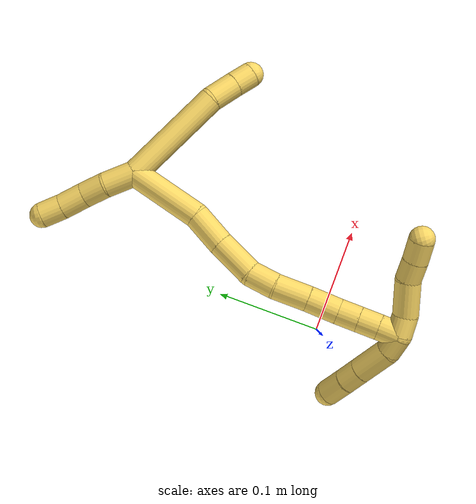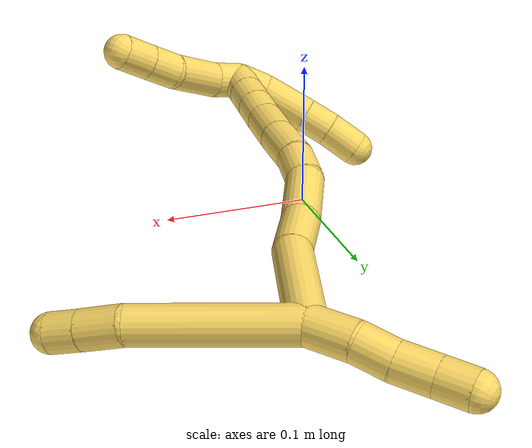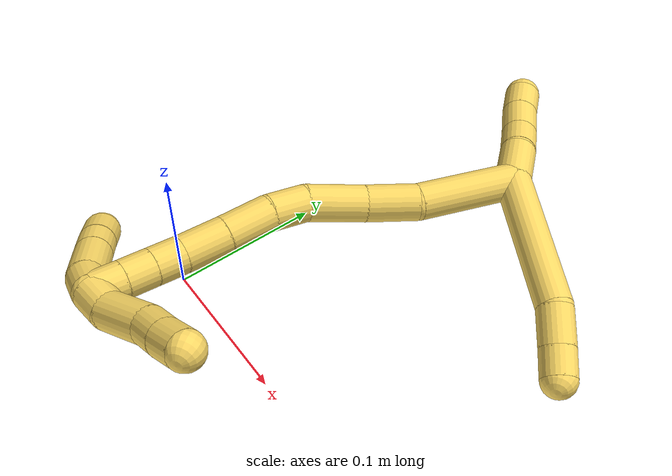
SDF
<sdf version="1.7">
 <world name="default">
  <model name="5">
   <static>0</static>
   <link name="5">
    <collision name="collision-cylinder-e_1_2_8">
     <pose>0.001645 0.026453 -0.04385 -2.59879 0.032106 -0.115259</pose>
     <geometry><cylinder><radius>0.0125</radius><length>0.102475</length></cylinder></geometry>
     <surface>
      <friction><ode><mu>1.16</mu><mu2>1.16</mu2><slip1>0</slip1><slip2>0</slip2></ode></friction>
      <contact><ode><kp>1e+06</kp><kd>1</kd><max_vel>0</max_vel><min_depth>0.001</min_depth></ode></contact>
     </surface>
    </collision>
    <visual name="visual-cylinder-e_1_2_8">
     <pose>0.001645 0.026453 -0.04385 -2.59879 0.032106 -0.115259</pose>
     <geometry><cylinder><radius>0.0125</radius><length>0.102475</length></cylinder></geometry>
     <material><ambient>1 0.858824 0.4 1</ambient></material>
    </visual>
    <collision name="collision-cylinder-e_2_8_9">
     <pose>-2.4e-05 0.059229 -0.09933 -2.64358 -0.245286 0.902729</pose>
     <geometry><cylinder><radius>0.0125</radius><length>0.027293</length></cylinder></geometry>
     <surface>
      <friction><ode><mu>1.16</mu><mu2>1.16</mu2><slip1>0</slip1><slip2>0</slip2></ode></friction>
      <contact><ode><kp>1e+06</kp><kd>1</kd><max_vel>0</max_vel><min_depth>0.001</min_depth></ode></contact>
     </surface>
    </collision>
    <visual name="visual-cylinder-e_2_8_9">
     <pose>-2.4e-05 0.059229 -0.09933 -2.64358 -0.245286 0.902729</pose>
     <geometry><cylinder><radius>0.0125</radius><length>0.027293</length></cylinder></geometry>
     <material><ambient>1 0.858824 0.4 1</ambient></material>
    </visual>
    <collision name="collision-cylinder-e_3_9_6">
     <pose>-0.005839 0.069988 -0.119701 -2.67203 -0.249788 0.966697</pose>
     <geometry><cylinder><radius>0.0125</radius><length>0.020232</length></cylinder></geometry>
     <surface>
      <friction><ode><mu>1.16</mu><mu2>1.16</mu2><slip1>0</slip1><slip2>0</slip2></ode></friction>
      <contact><ode><kp>1e+06</kp><kd>1</kd><max_vel>0</max_vel><min_depth>0.001</min_depth></ode></contact>
     </surface>
    </collision>
    <visual name="visual-cylinder-e_3_9_6">
     <pose>-0.005839 0.069988 -0.119701 -2.67203 -0.249788 0.966697</pose>
     <geometry><cylinder><radius>0.0125</radius><length>0.020232</length></cylinder></geometry>
     <material><ambient>1 0.858824 0.4 1</ambient></material>
    </visual>
    <collision name="collision-cylinder-e_1_2_10">
     <pose>0.000707 -0.001978 0.015009 0.131022 0.046638 0.00306</pose>
     <geometry><cylinder><radius>0.0125</radius><length>0.03031</length></cylinder></geometry>
     <surface>
      <friction><ode><mu>1.16</mu><mu2>1.16</mu2><slip1>0</slip1><slip2>0</slip2></ode></friction>
      <contact><ode><kp>1e+06</kp><kd>1</kd><max_vel>0</max_vel><min_depth>0.001</min_depth></ode></contact>
     </surface>
    </collision>
    <visual name="visual-cylinder-e_1_2_10">
     <pose>0.000707 -0.001978 0.015009 0.131022 0.046638 0.00306</pose>
     <geometry><cylinder><radius>0.0125</radius><length>0.03031</length></cylinder></geometry>
     <material><ambient>1 0.858824 0.4 1</ambient></material>
    </visual>
    <collision name="collision-cylinder-e_2_10_11">
     <pose>-0.000335 -0.004888 0.041436 0.081434 -0.15142 -0.006181</pose>
     <geometry><cylinder><radius>0.0125</radius><length>0.023179</length></cylinder></geometry>
     <surface>
      <friction><ode><mu>1.16</mu><mu2>1.16</mu2><slip1>0</slip1><slip2>0</slip2></ode></friction>
      <contact><ode><kp>1e+06</kp><kd>1</kd><max_vel>0</max_vel><min_depth>0.001</min_depth></ode></contact>
     </surface>
    </collision>
    <visual name="visual-cylinder-e_2_10_11">
     <pose>-0.000335 -0.004888 0.041436 0.081434 -0.15142 -0.006181</pose>
     <geometry><cylinder><radius>0.0125</radius><length>0.023179</length></cylinder></geometry>
     <material><ambient>1 0.858824 0.4 1</ambient></material>
    </visual>
    <collision name="collision-cylinder-e_3_11_12">
     <pose>-0.002898 -0.007983 0.065075 0.17519 -0.065563 -0.00576</pose>
     <geometry><cylinder><radius>0.0125</radius><length>0.024874</length></cylinder></geometry>
     <surface>
      <friction><ode><mu>1.16</mu><mu2>1.16</mu2><slip1>0</slip1><slip2>0</slip2></ode></friction>
      <contact><ode><kp>1e+06</kp><kd>1</kd><max_vel>0</max_vel><min_depth>0.001</min_depth></ode></contact>
     </surface>
    </collision>
    <visual name="visual-cylinder-e_3_11_12">
     <pose>-0.002898 -0.007983 0.065075 0.17519 -0.065563 -0.00576</pose>
     <geometry><cylinder><radius>0.0125</radius><length>0.024874</length></cylinder></geometry>
     <material><ambient>1 0.858824 0.4 1</ambient></material>
    </visual>
    <collision name="collision-cylinder-e_4_12_5">
     <pose>-0.00357 -0.011565 0.08802 0.13157 0.013225 0.000871</pose>
     <geometry><cylinder><radius>0.0125</radius><length>0.021637</length></cylinder></geometry>
     <surface>
      <friction><ode><mu>1.16</mu><mu2>1.16</mu2><slip1>0</slip1><slip2>0</slip2></ode></friction>
      <contact><ode><kp>1e+06</kp><kd>1</kd><max_vel>0</max_vel><min_depth>0.001</min_depth></ode></contact>
     </surface>
    </collision>
    <visual name="visual-cylinder-e_4_12_5">
     <pose>-0.00357 -0.011565 0.08802 0.13157 0.013225 0.000871</pose>
     <geometry><cylinder><radius>0.0125</radius><length>0.021637</length></cylinder></geometry>
     <material><ambient>1 0.858824 0.4 1</ambient></material>
    </visual>
    <collision name="collision-cylinder-e_1_2_13">
     <pose>-0.013098 -0.024548 -0.023221 2.32841 -0.369778 -0.819528</pose>
     <geometry><cylinder><radius>0.0125</radius><length>0.072481</length></cylinder></geometry>
     <surface>
      <friction><ode><mu>1.16</mu><mu2>1.16</mu2><slip1>0</slip1><slip2>0</slip2></ode></friction>
      <contact><ode><kp>1e+06</kp><kd>1</kd><max_vel>0</max_vel><min_depth>0.001</min_depth></ode></contact>
     </surface>
    </collision>
    <visual name="visual-cylinder-e_1_2_13">
     <pose>-0.013098 -0.024548 -0.023221 2.32841 -0.369778 -0.819528</pose>
     <geometry><cylinder><radius>0.0125</radius><length>0.072481</length></cylinder></geometry>
     <material><ambient>1 0.858824 0.4 1</ambient></material>
    </visual>
    <collision name="collision-cylinder-e_2_13_14">
     <pose>-0.033558 -0.063551 -0.054096 2.0578 -0.42301 -0.685204</pose>
     <geometry><cylinder><radius>0.0125</radius><length>0.035874</length></cylinder></geometry>
     <surface>
      <friction><ode><mu>1.16</mu><mu2>1.16</mu2><slip1>0</slip1><slip2>0</slip2></ode></friction>
      <contact><ode><kp>1e+06</kp><kd>1</kd><max_vel>0</max_vel><min_depth>0.001</min_depth></ode></contact>
     </surface>
    </collision>
    <visual name="visual-cylinder-e_2_13_14">
     <pose>-0.033558 -0.063551 -0.054096 2.0578 -0.42301 -0.685204</pose>
     <geometry><cylinder><radius>0.0125</radius><length>0.035874</length></cylinder></geometry>
     <material><ambient>1 0.858824 0.4 1</ambient></material>
    </visual>
    <collision name="collision-cylinder-e_3_14_15">
     <pose>-0.046614 -0.094662 -0.071959 2.12064 -0.283513 -0.499081</pose>
     <geometry><cylinder><radius>0.0125</radius><length>0.040696</length></cylinder></geometry>
     <surface>
      <friction><ode><mu>1.16</mu><mu2>1.16</mu2><slip1>0</slip1><slip2>0</slip2></ode></friction>
      <contact><ode><kp>1e+06</kp><kd>1</kd><max_vel>0</max_vel><min_depth>0.001</min_depth></ode></contact>
     </surface>
    </collision>
    <visual name="visual-cylinder-e_3_14_15">
     <pose>-0.046614 -0.094662 -0.071959 2.12064 -0.283513 -0.499081</pose>
     <geometry><cylinder><radius>0.0125</radius><length>0.040696</length></cylinder></geometry>
     <material><ambient>1 0.858824 0.4 1</ambient></material>
    </visual>
    <collision name="collision-cylinder-e_4_15_16">
     <pose>-0.056074 -0.119454 -0.091792 2.43987 -0.290561 -0.76058</pose>
     <geometry><cylinder><radius>0.0125</radius><length>0.026308</length></cylinder></geometry>
     <surface>
      <friction><ode><mu>1.16</mu><mu2>1.16</mu2><slip1>0</slip1><slip2>0</slip2></ode></friction>
      <contact><ode><kp>1e+06</kp><kd>1</kd><max_vel>0</max_vel><min_depth>0.001</min_depth></ode></contact>
     </surface>
    </collision>
    <visual name="visual-cylinder-e_4_15_16">
     <pose>-0.056074 -0.119454 -0.091792 2.43987 -0.290561 -0.76058</pose>
     <geometry><cylinder><radius>0.0125</radius><length>0.026308</length></cylinder></geometry>
     <material><ambient>1 0.858824 0.4 1</ambient></material>
    </visual>
    <collision name="collision-cylinder-e_5_16_17">
     <pose>-0.065913 -0.135574 -0.114588 2.59657 -0.375448 -1.19398</pose>
     <geometry><cylinder><radius>0.0125</radius><length>0.033111</length></cylinder></geometry>
     <surface>
      <friction><ode><mu>1.16</mu><mu2>1.16</mu2><slip1>0</slip1><slip2>0</slip2></ode></friction>
      <contact><ode><kp>1e+06</kp><kd>1</kd><max_vel>0</max_vel><min_depth>0.001</min_depth></ode></contact>
     </surface>
    </collision>
    <visual name="visual-cylinder-e_5_16_17">
     <pose>-0.065913 -0.135574 -0.114588 2.59657 -0.375448 -1.19398</pose>
     <geometry><cylinder><radius>0.0125</radius><length>0.033111</length></cylinder></geometry>
     <material><ambient>1 0.858824 0.4 1</ambient></material>
    </visual>
    <collision name="collision-cylinder-e_6_17_18">
     <pose>-0.077902 -0.151353 -0.139637 2.5609 -0.394672 -1.17945</pose>
     <geometry><cylinder><radius>0.0125</radius><length>0.03078</length></cylinder></geometry>
     <surface>
      <friction><ode><mu>1.16</mu><mu2>1.16</mu2><slip1>0</slip1><slip2>0</slip2></ode></friction>
      <contact><ode><kp>1e+06</kp><kd>1</kd><max_vel>0</max_vel><min_depth>0.001</min_depth></ode></contact>
     </surface>
    </collision>
    <visual name="visual-cylinder-e_6_17_18">
     <pose>-0.077902 -0.151353 -0.139637 2.5609 -0.394672 -1.17945</pose>
     <geometry><cylinder><radius>0.0125</radius><length>0.03078</length></cylinder></geometry>
     <material><ambient>1 0.858824 0.4 1</ambient></material>
    </visual>
    <collision name="collision-cylinder-e_7_18_19">
     <pose>-0.086816 -0.164553 -0.159805 2.56382 -0.294018 -0.924479</pose>
     <geometry><cylinder><radius>0.0125</radius><length>0.020682</length></cylinder></geometry>
     <surface>
      <friction><ode><mu>1.16</mu><mu2>1.16</mu2><slip1>0</slip1><slip2>0</slip2></ode></friction>
      <contact><ode><kp>1e+06</kp><kd>1</kd><max_vel>0</max_vel><min_depth>0.001</min_depth></ode></contact>
     </surface>
    </collision>
    <visual name="visual-cylinder-e_7_18_19">
     <pose>-0.086816 -0.164553 -0.159805 2.56382 -0.294018 -0.924479</pose>
     <geometry><cylinder><radius>0.0125</radius><length>0.020682</length></cylinder></geometry>
     <material><ambient>1 0.858824 0.4 1</ambient></material>
    </visual>
    <collision name="collision-cylinder-e_8_19_20">
     <pose>-0.092791 -0.175181 -0.176101 2.56355 -0.302108 -0.946248</pose>
     <geometry><cylinder><radius>0.0125</radius><length>0.020022</length></cylinder></geometry>
     <surface>
      <friction><ode><mu>1.16</mu><mu2>1.16</mu2><slip1>0</slip1><slip2>0</slip2></ode></friction>
      <contact><ode><kp>1e+06</kp><kd>1</kd><max_vel>0</max_vel><min_depth>0.001</min_depth></ode></contact>
     </surface>
    </collision>
    <visual name="visual-cylinder-e_8_19_20">
     <pose>-0.092791 -0.175181 -0.176101 2.56355 -0.302108 -0.946248</pose>
     <geometry><cylinder><radius>0.0125</radius><length>0.020022</length></cylinder></geometry>
     <material><ambient>1 0.858824 0.4 1</ambient></material>
    </visual>
    <collision name="collision-cylinder-e_9_20_1">
     <pose>-0.098813 -0.185785 -0.191995 2.54285 -0.308486 -0.933264</pose>
     <geometry><cylinder><radius>0.0125</radius><length>0.020045</length></cylinder></geometry>
     <surface>
      <friction><ode><mu>1.16</mu><mu2>1.16</mu2><slip1>0</slip1><slip2>0</slip2></ode></friction>
      <contact><ode><kp>1e+06</kp><kd>1</kd><max_vel>0</max_vel><min_depth>0.001</min_depth></ode></contact>
     </surface>
    </collision>
    <visual name="visual-cylinder-e_9_20_1">
     <pose>-0.098813 -0.185785 -0.191995 2.54285 -0.308486 -0.933264</pose>
     <geometry><cylinder><radius>0.0125</radius><length>0.020045</length></cylinder></geometry>
     <material><ambient>1 0.858824 0.4 1</ambient></material>
    </visual>
    <collision name="collision-cylinder-e_1_1_21">
     <pose>-0.10758 -0.194958 -0.192485 0.473519 -0.602998 -0.149789</pose>
     <geometry><cylinder><radius>0.0125</radius><length>0.020184</length></cylinder></geometry>
     <surface>
      <friction><ode><mu>1.16</mu><mu2>1.16</mu2><slip1>0</slip1><slip2>0</slip2></ode></friction>
      <contact><ode><kp>1e+06</kp><kd>1</kd><max_vel>0</max_vel><min_depth>0.001</min_depth></ode></contact>
     </surface>
    </collision>
    <visual name="visual-cylinder-e_1_1_21">
     <pose>-0.10758 -0.194958 -0.192485 0.473519 -0.602998 -0.149789</pose>
     <geometry><cylinder><radius>0.0125</radius><length>0.020184</length></cylinder></geometry>
     <material><ambient>1 0.858824 0.4 1</ambient></material>
    </visual>
    <collision name="collision-cylinder-e_2_21_22">
     <pose>-0.121048 -0.201267 -0.169384 0.159051 -0.453179 -0.036742</pose>
     <geometry><cylinder><radius>0.0125</radius><length>0.035379</length></cylinder></geometry>
     <surface>
      <friction><ode><mu>1.16</mu><mu2>1.16</mu2><slip1>0</slip1><slip2>0</slip2></ode></friction>
      <contact><ode><kp>1e+06</kp><kd>1</kd><max_vel>0</max_vel><min_depth>0.001</min_depth></ode></contact>
     </surface>
    </collision>
    <visual name="visual-cylinder-e_2_21_22">
     <pose>-0.121048 -0.201267 -0.169384 0.159051 -0.453179 -0.036742</pose>
     <geometry><cylinder><radius>0.0125</radius><length>0.035379</length></cylinder></geometry>
     <material><ambient>1 0.858824 0.4 1</ambient></material>
    </visual>
    <collision name="collision-cylinder-e_3_22_23">
     <pose>-0.133385 -0.205099 -0.144877 0.148046 -0.476322 -0.036003</pose>
     <geometry><cylinder><radius>0.0125</radius><length>0.020033</length></cylinder></geometry>
     <surface>
      <friction><ode><mu>1.16</mu><mu2>1.16</mu2><slip1>0</slip1><slip2>0</slip2></ode></friction>
      <contact><ode><kp>1e+06</kp><kd>1</kd><max_vel>0</max_vel><min_depth>0.001</min_depth></ode></contact>
     </surface>
    </collision>
    <visual name="visual-cylinder-e_3_22_23">
     <pose>-0.133385 -0.205099 -0.144877 0.148046 -0.476322 -0.036003</pose>
     <geometry><cylinder><radius>0.0125</radius><length>0.020033</length></cylinder></geometry>
     <material><ambient>1 0.858824 0.4 1</ambient></material>
    </visual>
    <collision name="collision-cylinder-e_4_23_4">
     <pose>-0.144204 -0.207393 -0.125625 0.093573 -0.53545 -0.025686</pose>
     <geometry><cylinder><radius>0.0125</radius><length>0.024404</length></cylinder></geometry>
     <surface>
      <friction><ode><mu>1.16</mu><mu2>1.16</mu2><slip1>0</slip1><slip2>0</slip2></ode></friction>
      <contact><ode><kp>1e+06</kp><kd>1</kd><max_vel>0</max_vel><min_depth>0.001</min_depth></ode></contact>
     </surface>
    </collision>
    <visual name="visual-cylinder-e_4_23_4">
     <pose>-0.144204 -0.207393 -0.125625 0.093573 -0.53545 -0.025686</pose>
     <geometry><cylinder><radius>0.0125</radius><length>0.024404</length></cylinder></geometry>
     <material><ambient>1 0.858824 0.4 1</ambient></material>
    </visual>
    <collision name="collision-cylinder-e_1_1_24">
     <pose>-0.097208 -0.184094 -0.205524 -2.24403 0.474612 -0.930907</pose>
     <geometry><cylinder><radius>0.0125</radius><length>0.020344</length></cylinder></geometry>
     <surface>
      <friction><ode><mu>1.16</mu><mu2>1.16</mu2><slip1>0</slip1><slip2>0</slip2></ode></friction>
      <contact><ode><kp>1e+06</kp><kd>1</kd><max_vel>0</max_vel><min_depth>0.001</min_depth></ode></contact>
     </surface>
    </collision>
    <visual name="visual-cylinder-e_1_1_24">
     <pose>-0.097208 -0.184094 -0.205524 -2.24403 0.474612 -0.930907</pose>
     <geometry><cylinder><radius>0.0125</radius><length>0.020344</length></cylinder></geometry>
     <material><ambient>1 0.858824 0.4 1</ambient></material>
    </visual>
    <collision name="collision-cylinder-e_2_24_25">
     <pose>-0.079761 -0.165712 -0.217451 -2.07806 0.780013 -1.21976</pose>
     <geometry><cylinder><radius>0.0125</radius><length>0.036396</length></cylinder></geometry>
     <surface>
      <friction><ode><mu>1.16</mu><mu2>1.16</mu2><slip1>0</slip1><slip2>0</slip2></ode></friction>
      <contact><ode><kp>1e+06</kp><kd>1</kd><max_vel>0</max_vel><min_depth>0.001</min_depth></ode></contact>
     </surface>
    </collision>
    <visual name="visual-cylinder-e_2_24_25">
     <pose>-0.079761 -0.165712 -0.217451 -2.07806 0.780013 -1.21976</pose>
     <geometry><cylinder><radius>0.0125</radius><length>0.036396</length></cylinder></geometry>
     <material><ambient>1 0.858824 0.4 1</ambient></material>
    </visual>
    <collision name="collision-cylinder-e_3_25_26">
     <pose>-0.059861 -0.149341 -0.229708 -2.43838 0.736652 -1.62151</pose>
     <geometry><cylinder><radius>0.0125</radius><length>0.021142</length></cylinder></geometry>
     <surface>
      <friction><ode><mu>1.16</mu><mu2>1.16</mu2><slip1>0</slip1><slip2>0</slip2></ode></friction>
      <contact><ode><kp>1e+06</kp><kd>1</kd><max_vel>0</max_vel><min_depth>0.001</min_depth></ode></contact>
     </surface>
    </collision>
    <visual name="visual-cylinder-e_3_25_26">
     <pose>-0.059861 -0.149341 -0.229708 -2.43838 0.736652 -1.62151</pose>
     <geometry><cylinder><radius>0.0125</radius><length>0.021142</length></cylinder></geometry>
     <material><ambient>1 0.858824 0.4 1</ambient></material>
    </visual>
    <collision name="collision-cylinder-e_4_26_3">
     <pose>-0.044983 -0.138878 -0.241397 -2.38473 0.779771 -1.60376</pose>
     <geometry><cylinder><radius>0.0125</radius><length>0.022118</length></cylinder></geometry>
     <surface>
      <friction><ode><mu>1.16</mu><mu2>1.16</mu2><slip1>0</slip1><slip2>0</slip2></ode></friction>
      <contact><ode><kp>1e+06</kp><kd>1</kd><max_vel>0</max_vel><min_depth>0.001</min_depth></ode></contact>
     </surface>
    </collision>
    <visual name="visual-cylinder-e_4_26_3">
     <pose>-0.044983 -0.138878 -0.241397 -2.38473 0.779771 -1.60376</pose>
     <geometry><cylinder><radius>0.0125</radius><length>0.022118</length></cylinder></geometry>
     <material><ambient>1 0.858824 0.4 1</ambient></material>
    </visual>
    <collision name="collision-sphere-3">
     <pose>-0.037207 -0.133478 -0.247114 0 -0 0</pose>
     <geometry><sphere><radius>0.0125</radius></sphere></geometry>
     <surface>
      <friction><ode><mu>1.16</mu><mu2>1.16</mu2><slip1>0</slip1><slip2>0</slip2></ode></friction>
      <contact><ode><kp>1e+06</kp><kd>1</kd><max_vel>0</max_vel><min_depth>0.001</min_depth></ode></contact>
     </surface>
    </collision>
    <visual name="visual-sphere-3">
     <pose>-0.037207 -0.133478 -0.247114 0 -0 0</pose>
     <geometry><sphere><radius>0.0125</radius></sphere></geometry>
     <material><ambient>1 0.858824 0.4 1</ambient></material>
    </visual>
    <collision name="collision-sphere-26">
     <pose>-0.052759 -0.144277 -0.23568 0 -0 0</pose>
     <geometry><sphere><radius>0.0125</radius></sphere></geometry>
     <surface>
      <friction><ode><mu>1.16</mu><mu2>1.16</mu2><slip1>0</slip1><slip2>0</slip2></ode></friction>
      <contact><ode><kp>1e+06</kp><kd>1</kd><max_vel>0</max_vel><min_depth>0.001</min_depth></ode></contact>
     </surface>
    </collision>
    <visual name="visual-sphere-26">
     <pose>-0.052759 -0.144277 -0.23568 0 -0 0</pose>
     <geometry><sphere><radius>0.0125</radius></sphere></geometry>
     <material><ambient>1 0.858824 0.4 1</ambient></material>
    </visual>
    <collision name="collision-sphere-25">
     <pose>-0.066962 -0.154404 -0.223735 0 -0 0</pose>
     <geometry><sphere><radius>0.0125</radius></sphere></geometry>
     <surface>
      <friction><ode><mu>1.16</mu><mu2>1.16</mu2><slip1>0</slip1><slip2>0</slip2></ode></friction>
      <contact><ode><kp>1e+06</kp><kd>1</kd><max_vel>0</max_vel><min_depth>0.001</min_depth></ode></contact>
     </surface>
    </collision>
    <visual name="visual-sphere-25">
     <pose>-0.066962 -0.154404 -0.223735 0 -0 0</pose>
     <geometry><sphere><radius>0.0125</radius></sphere></geometry>
     <material><ambient>1 0.858824 0.4 1</ambient></material>
    </visual>
    <collision name="collision-sphere-24">
     <pose>-0.092559 -0.17702 -0.211166 0 -0 0</pose>
     <geometry><sphere><radius>0.0125</radius></sphere></geometry>
     <surface>
      <friction><ode><mu>1.16</mu><mu2>1.16</mu2><slip1>0</slip1><slip2>0</slip2></ode></friction>
      <contact><ode><kp>1e+06</kp><kd>1</kd><max_vel>0</max_vel><min_depth>0.001</min_depth></ode></contact>
     </surface>
    </collision>
    <visual name="visual-sphere-24">
     <pose>-0.092559 -0.17702 -0.211166 0 -0 0</pose>
     <geometry><sphere><radius>0.0125</radius></sphere></geometry>
     <material><ambient>1 0.858824 0.4 1</ambient></material>
    </visual>
    <collision name="collision-sphere-4">
     <pose>-0.15043 -0.208373 -0.115176 0 -0 0</pose>
     <geometry><sphere><radius>0.0125</radius></sphere></geometry>
     <surface>
      <friction><ode><mu>1.16</mu><mu2>1.16</mu2><slip1>0</slip1><slip2>0</slip2></ode></friction>
      <contact><ode><kp>1e+06</kp><kd>1</kd><max_vel>0</max_vel><min_depth>0.001</min_depth></ode></contact>
     </surface>
    </collision>
    <visual name="visual-sphere-4">
     <pose>-0.15043 -0.208373 -0.115176 0 -0 0</pose>
     <geometry><sphere><radius>0.0125</radius></sphere></geometry>
     <material><ambient>1 0.858824 0.4 1</ambient></material>
    </visual>
    <collision name="collision-sphere-23">
     <pose>-0.137978 -0.206412 -0.136073 0 -0 0</pose>
     <geometry><sphere><radius>0.0125</radius></sphere></geometry>
     <surface>
      <friction><ode><mu>1.16</mu><mu2>1.16</mu2><slip1>0</slip1><slip2>0</slip2></ode></friction>
      <contact><ode><kp>1e+06</kp><kd>1</kd><max_vel>0</max_vel><min_depth>0.001</min_depth></ode></contact>
     </surface>
    </collision>
    <visual name="visual-sphere-23">
     <pose>-0.137978 -0.206412 -0.136073 0 -0 0</pose>
     <geometry><sphere><radius>0.0125</radius></sphere></geometry>
     <material><ambient>1 0.858824 0.4 1</ambient></material>
    </visual>
    <collision name="collision-sphere-22">
     <pose>-0.128793 -0.203786 -0.153681 0 -0 0</pose>
     <geometry><sphere><radius>0.0125</radius></sphere></geometry>
     <surface>
      <friction><ode><mu>1.16</mu><mu2>1.16</mu2><slip1>0</slip1><slip2>0</slip2></ode></friction>
      <contact><ode><kp>1e+06</kp><kd>1</kd><max_vel>0</max_vel><min_depth>0.001</min_depth></ode></contact>
     </surface>
    </collision>
    <visual name="visual-sphere-22">
     <pose>-0.128793 -0.203786 -0.153681 0 -0 0</pose>
     <geometry><sphere><radius>0.0125</radius></sphere></geometry>
     <material><ambient>1 0.858824 0.4 1</ambient></material>
    </visual>
    <collision name="collision-sphere-21">
     <pose>-0.113303 -0.198748 -0.185088 0 -0 0</pose>
     <geometry><sphere><radius>0.0125</radius></sphere></geometry>
     <surface>
      <friction><ode><mu>1.16</mu><mu2>1.16</mu2><slip1>0</slip1><slip2>0</slip2></ode></friction>
      <contact><ode><kp>1e+06</kp><kd>1</kd><max_vel>0</max_vel><min_depth>0.001</min_depth></ode></contact>
     </surface>
    </collision>
    <visual name="visual-sphere-21">
     <pose>-0.113303 -0.198748 -0.185088 0 -0 0</pose>
     <geometry><sphere><radius>0.0125</radius></sphere></geometry>
     <material><ambient>1 0.858824 0.4 1</ambient></material>
    </visual>
    <collision name="collision-sphere-1">
     <pose>-0.101856 -0.191167 -0.199883 0 -0 0</pose>
     <geometry><sphere><radius>0.0125</radius></sphere></geometry>
     <surface>
      <friction><ode><mu>1.16</mu><mu2>1.16</mu2><slip1>0</slip1><slip2>0</slip2></ode></friction>
      <contact><ode><kp>1e+06</kp><kd>1</kd><max_vel>0</max_vel><min_depth>0.001</min_depth></ode></contact>
     </surface>
    </collision>
    <visual name="visual-sphere-1">
     <pose>-0.101856 -0.191167 -0.199883 0 -0 0</pose>
     <geometry><sphere><radius>0.0125</radius></sphere></geometry>
     <material><ambient>1 0.858824 0.4 1</ambient></material>
    </visual>
    <collision name="collision-sphere-11">
     <pose>-0.002083 -0.00582 0.052855 0 -0 0</pose>
     <geometry><sphere><radius>0.0125</radius></sphere></geometry>
     <surface>
      <friction><ode><mu>1.16</mu><mu2>1.16</mu2><slip1>0</slip1><slip2>0</slip2></ode></friction>
      <contact><ode><kp>1e+06</kp><kd>1</kd><max_vel>0</max_vel><min_depth>0.001</min_depth></ode></contact>
     </surface>
    </collision>
    <visual name="visual-sphere-11">
     <pose>-0.002083 -0.00582 0.052855 0 -0 0</pose>
     <geometry><sphere><radius>0.0125</radius></sphere></geometry>
     <material><ambient>1 0.858824 0.4 1</ambient></material>
    </visual>
    <collision name="collision-sphere-10">
     <pose>0.001413 -0.003956 0.030017 0 -0 0</pose>
     <geometry><sphere><radius>0.0125</radius></sphere></geometry>
     <surface>
      <friction><ode><mu>1.16</mu><mu2>1.16</mu2><slip1>0</slip1><slip2>0</slip2></ode></friction>
      <contact><ode><kp>1e+06</kp><kd>1</kd><max_vel>0</max_vel><min_depth>0.001</min_depth></ode></contact>
     </surface>
    </collision>
    <visual name="visual-sphere-10">
     <pose>0.001413 -0.003956 0.030017 0 -0 0</pose>
     <geometry><sphere><radius>0.0125</radius></sphere></geometry>
     <material><ambient>1 0.858824 0.4 1</ambient></material>
    </visual>
    <collision name="collision-sphere-6">
     <pose>-0.008339 0.074423 -0.128443 0 -0 0</pose>
     <geometry><sphere><radius>0.0125</radius></sphere></geometry>
     <surface>
      <friction><ode><mu>1.16</mu><mu2>1.16</mu2><slip1>0</slip1><slip2>0</slip2></ode></friction>
      <contact><ode><kp>1e+06</kp><kd>1</kd><max_vel>0</max_vel><min_depth>0.001</min_depth></ode></contact>
     </surface>
    </collision>
    <visual name="visual-sphere-6">
     <pose>-0.008339 0.074423 -0.128443 0 -0 0</pose>
     <geometry><sphere><radius>0.0125</radius></sphere></geometry>
     <material><ambient>1 0.858824 0.4 1</ambient></material>
    </visual>
    <collision name="collision-sphere-9">
     <pose>-0.003338 0.065552 -0.11096 0 -0 0</pose>
     <geometry><sphere><radius>0.0125</radius></sphere></geometry>
     <surface>
      <friction><ode><mu>1.16</mu><mu2>1.16</mu2><slip1>0</slip1><slip2>0</slip2></ode></friction>
      <contact><ode><kp>1e+06</kp><kd>1</kd><max_vel>0</max_vel><min_depth>0.001</min_depth></ode></contact>
     </surface>
    </collision>
    <visual name="visual-sphere-9">
     <pose>-0.003338 0.065552 -0.11096 0 -0 0</pose>
     <geometry><sphere><radius>0.0125</radius></sphere></geometry>
     <material><ambient>1 0.858824 0.4 1</ambient></material>
    </visual>
    <collision name="collision-sphere-2">
     <geometry><sphere><radius>0.0125</radius></sphere></geometry>
     <surface>
      <friction><ode><mu>1.16</mu><mu2>1.16</mu2><slip1>0</slip1><slip2>0</slip2></ode></friction>
      <contact><ode><kp>1e+06</kp><kd>1</kd><max_vel>0</max_vel><min_depth>0.001</min_depth></ode></contact>
     </surface>
    </collision>
    <visual name="visual-sphere-2">
     <geometry><sphere><radius>0.0125</radius></sphere></geometry>
     <material><ambient>1 0.858824 0.4 1</ambient></material>
    </visual>
    <collision name="collision-sphere-19">
     <pose>-0.089813 -0.169958 -0.168096 0 -0 0</pose>
     <geometry><sphere><radius>0.0125</radius></sphere></geometry>
     <surface>
      <friction><ode><mu>1.16</mu><mu2>1.16</mu2><slip1>0</slip1><slip2>0</slip2></ode></friction>
      <contact><ode><kp>1e+06</kp><kd>1</kd><max_vel>0</max_vel><min_depth>0.001</min_depth></ode></contact>
     </surface>
    </collision>
    <visual name="visual-sphere-19">
     <pose>-0.089813 -0.169958 -0.168096 0 -0 0</pose>
     <geometry><sphere><radius>0.0125</radius></sphere></geometry>
     <material><ambient>1 0.858824 0.4 1</ambient></material>
    </visual>
    <collision name="collision-sphere-8">
     <pose>0.003289 0.052905 -0.087701 0 -0 0</pose>
     <geometry><sphere><radius>0.0125</radius></sphere></geometry>
     <surface>
      <friction><ode><mu>1.16</mu><mu2>1.16</mu2><slip1>0</slip1><slip2>0</slip2></ode></friction>
      <contact><ode><kp>1e+06</kp><kd>1</kd><max_vel>0</max_vel><min_depth>0.001</min_depth></ode></contact>
     </surface>
    </collision>
    <visual name="visual-sphere-8">
     <pose>0.003289 0.052905 -0.087701 0 -0 0</pose>
     <geometry><sphere><radius>0.0125</radius></sphere></geometry>
     <material><ambient>1 0.858824 0.4 1</ambient></material>
    </visual>
    <collision name="collision-sphere-12">
     <pose>-0.003713 -0.010146 0.077296 0 -0 0</pose>
     <geometry><sphere><radius>0.0125</radius></sphere></geometry>
     <surface>
      <friction><ode><mu>1.16</mu><mu2>1.16</mu2><slip1>0</slip1><slip2>0</slip2></ode></friction>
      <contact><ode><kp>1e+06</kp><kd>1</kd><max_vel>0</max_vel><min_depth>0.001</min_depth></ode></contact>
     </surface>
    </collision>
    <visual name="visual-sphere-12">
     <pose>-0.003713 -0.010146 0.077296 0 -0 0</pose>
     <geometry><sphere><radius>0.0125</radius></sphere></geometry>
     <material><ambient>1 0.858824 0.4 1</ambient></material>
    </visual>
    <collision name="collision-sphere-5">
     <pose>-0.003427 -0.012984 0.098744 0 -0 0</pose>
     <geometry><sphere><radius>0.0125</radius></sphere></geometry>
     <surface>
      <friction><ode><mu>1.16</mu><mu2>1.16</mu2><slip1>0</slip1><slip2>0</slip2></ode></friction>
      <contact><ode><kp>1e+06</kp><kd>1</kd><max_vel>0</max_vel><min_depth>0.001</min_depth></ode></contact>
     </surface>
    </collision>
    <visual name="visual-sphere-5">
     <pose>-0.003427 -0.012984 0.098744 0 -0 0</pose>
     <geometry><sphere><radius>0.0125</radius></sphere></geometry>
     <material><ambient>1 0.858824 0.4 1</ambient></material>
    </visual>
    <collision name="collision-sphere-13">
     <pose>-0.026195 -0.049097 -0.046441 0 -0 0</pose>
     <geometry><sphere><radius>0.0125</radius></sphere></geometry>
     <surface>
      <friction><ode><mu>1.16</mu><mu2>1.16</mu2><slip1>0</slip1><slip2>0</slip2></ode></friction>
      <contact><ode><kp>1e+06</kp><kd>1</kd><max_vel>0</max_vel><min_depth>0.001</min_depth></ode></contact>
     </surface>
    </collision>
    <visual name="visual-sphere-13">
     <pose>-0.026195 -0.049097 -0.046441 0 -0 0</pose>
     <geometry><sphere><radius>0.0125</radius></sphere></geometry>
     <material><ambient>1 0.858824 0.4 1</ambient></material>
    </visual>
    <collision name="collision-sphere-14">
     <pose>-0.040922 -0.078005 -0.06175 0 -0 0</pose>
     <geometry><sphere><radius>0.0125</radius></sphere></geometry>
     <surface>
      <friction><ode><mu>1.16</mu><mu2>1.16</mu2><slip1>0</slip1><slip2>0</slip2></ode></friction>
      <contact><ode><kp>1e+06</kp><kd>1</kd><max_vel>0</max_vel><min_depth>0.001</min_depth></ode></contact>
     </surface>
    </collision>
    <visual name="visual-sphere-14">
     <pose>-0.040922 -0.078005 -0.06175 0 -0 0</pose>
     <geometry><sphere><radius>0.0125</radius></sphere></geometry>
     <material><ambient>1 0.858824 0.4 1</ambient></material>
    </visual>
    <collision name="collision-sphere-15">
     <pose>-0.052306 -0.111318 -0.082167 0 -0 0</pose>
     <geometry><sphere><radius>0.0125</radius></sphere></geometry>
     <surface>
      <friction><ode><mu>1.16</mu><mu2>1.16</mu2><slip1>0</slip1><slip2>0</slip2></ode></friction>
      <contact><ode><kp>1e+06</kp><kd>1</kd><max_vel>0</max_vel><min_depth>0.001</min_depth></ode></contact>
     </surface>
    </collision>
    <visual name="visual-sphere-15">
     <pose>-0.052306 -0.111318 -0.082167 0 -0 0</pose>
     <geometry><sphere><radius>0.0125</radius></sphere></geometry>
     <material><ambient>1 0.858824 0.4 1</ambient></material>
    </visual>
    <collision name="collision-sphere-16">
     <pose>-0.059843 -0.127589 -0.101417 0 -0 0</pose>
     <geometry><sphere><radius>0.0125</radius></sphere></geometry>
     <surface>
      <friction><ode><mu>1.16</mu><mu2>1.16</mu2><slip1>0</slip1><slip2>0</slip2></ode></friction>
      <contact><ode><kp>1e+06</kp><kd>1</kd><max_vel>0</max_vel><min_depth>0.001</min_depth></ode></contact>
     </surface>
    </collision>
    <visual name="visual-sphere-16">
     <pose>-0.059843 -0.127589 -0.101417 0 -0 0</pose>
     <geometry><sphere><radius>0.0125</radius></sphere></geometry>
     <material><ambient>1 0.858824 0.4 1</ambient></material>
    </visual>
    <collision name="collision-sphere-17">
     <pose>-0.071984 -0.14356 -0.127759 0 -0 0</pose>
     <geometry><sphere><radius>0.0125</radius></sphere></geometry>
     <surface>
      <friction><ode><mu>1.16</mu><mu2>1.16</mu2><slip1>0</slip1><slip2>0</slip2></ode></friction>
      <contact><ode><kp>1e+06</kp><kd>1</kd><max_vel>0</max_vel><min_depth>0.001</min_depth></ode></contact>
     </surface>
    </collision>
    <visual name="visual-sphere-17">
     <pose>-0.071984 -0.14356 -0.127759 0 -0 0</pose>
     <geometry><sphere><radius>0.0125</radius></sphere></geometry>
     <material><ambient>1 0.858824 0.4 1</ambient></material>
    </visual>
    <collision name="collision-sphere-18">
     <pose>-0.083819 -0.159147 -0.151515 0 -0 0</pose>
     <geometry><sphere><radius>0.0125</radius></sphere></geometry>
     <surface>
      <friction><ode><mu>1.16</mu><mu2>1.16</mu2><slip1>0</slip1><slip2>0</slip2></ode></friction>
      <contact><ode><kp>1e+06</kp><kd>1</kd><max_vel>0</max_vel><min_depth>0.001</min_depth></ode></contact>
     </surface>
    </collision>
    <visual name="visual-sphere-18">
     <pose>-0.083819 -0.159147 -0.151515 0 -0 0</pose>
     <geometry><sphere><radius>0.0125</radius></sphere></geometry>
     <material><ambient>1 0.858824 0.4 1</ambient></material>
    </visual>
    <collision name="collision-sphere-20">
     <pose>-0.09577 -0.180403 -0.184106 0 -0 0</pose>
     <geometry><sphere><radius>0.0125</radius></sphere></geometry>
     <surface>
      <friction><ode><mu>1.16</mu><mu2>1.16</mu2><slip1>0</slip1><slip2>0</slip2></ode></friction>
      <contact><ode><kp>1e+06</kp><kd>1</kd><max_vel>0</max_vel><min_depth>0.001</min_depth></ode></contact>
     </surface>
    </collision>
    <visual name="visual-sphere-20">
     <pose>-0.09577 -0.180403 -0.184106 0 -0 0</pose>
     <geometry><sphere><radius>0.0125</radius></sphere></geometry>
     <material><ambient>1 0.858824 0.4 1</ambient></material>
    </visual>
    <inertial>
     <pose>-0.047483 -0.082596 -0.094085 0 -0 0</pose>
     <mass>0.75</mass>
     <inertia><ixx>9e-05</ixx><ixy>0</ixy><ixz>0</ixz><iyy>-0.000139</iyy><iyz>0</iyz><izz>-9e-06</izz></inertia>
    </inertial>
   </link>
   <pose>0.081634 0.217398 0.032305 -1.9271 -1.04293 0.946565</pose>
  </model>
 </world>
</sdf>
